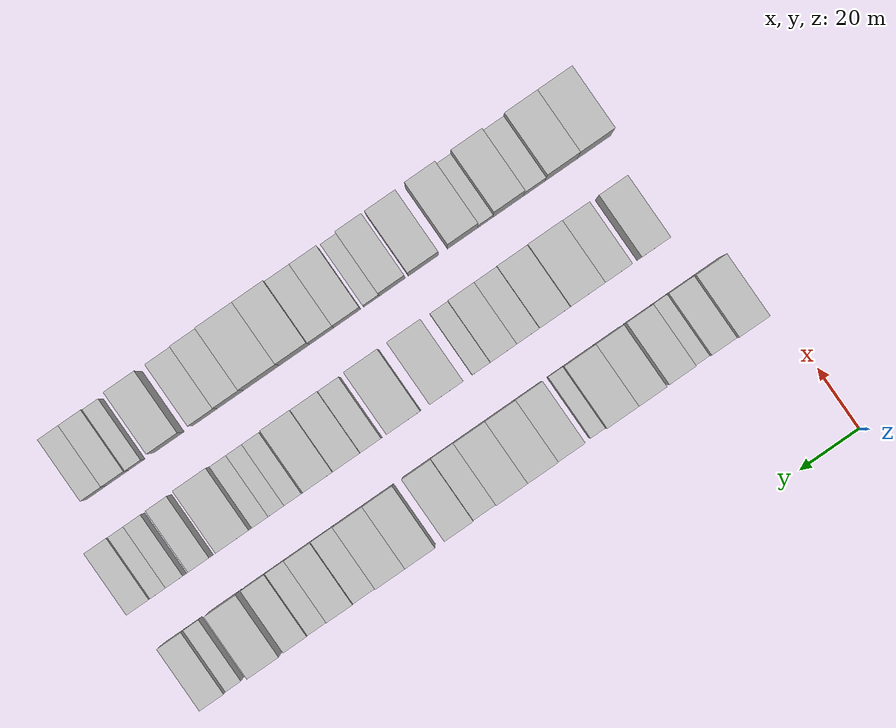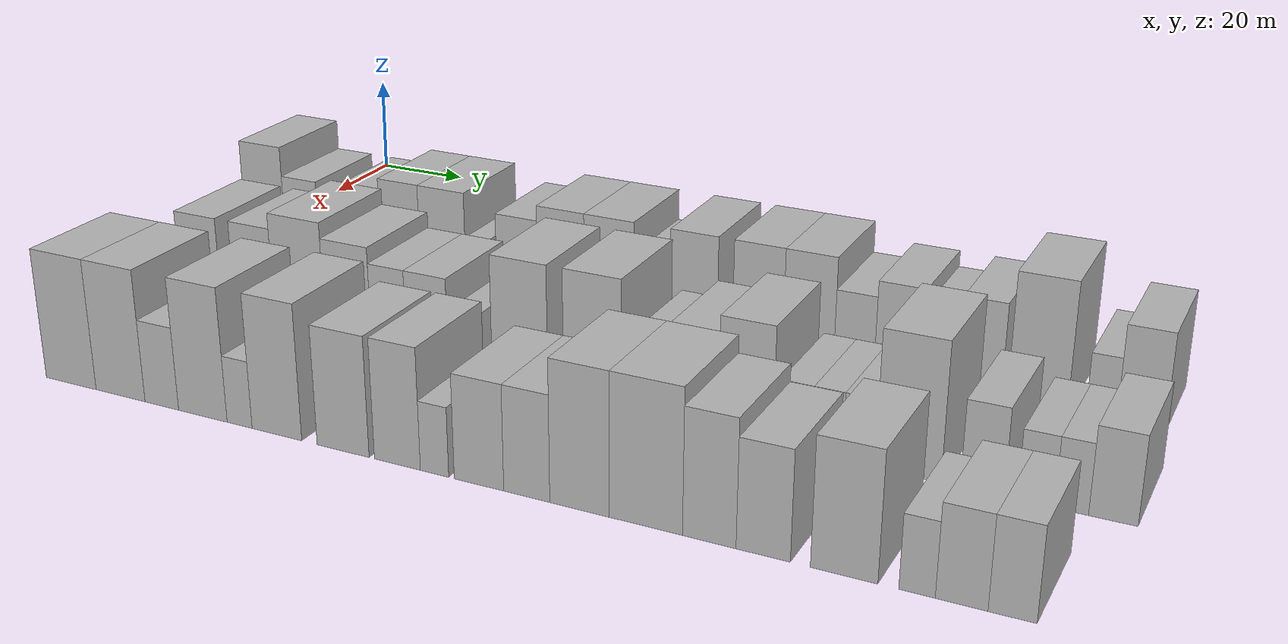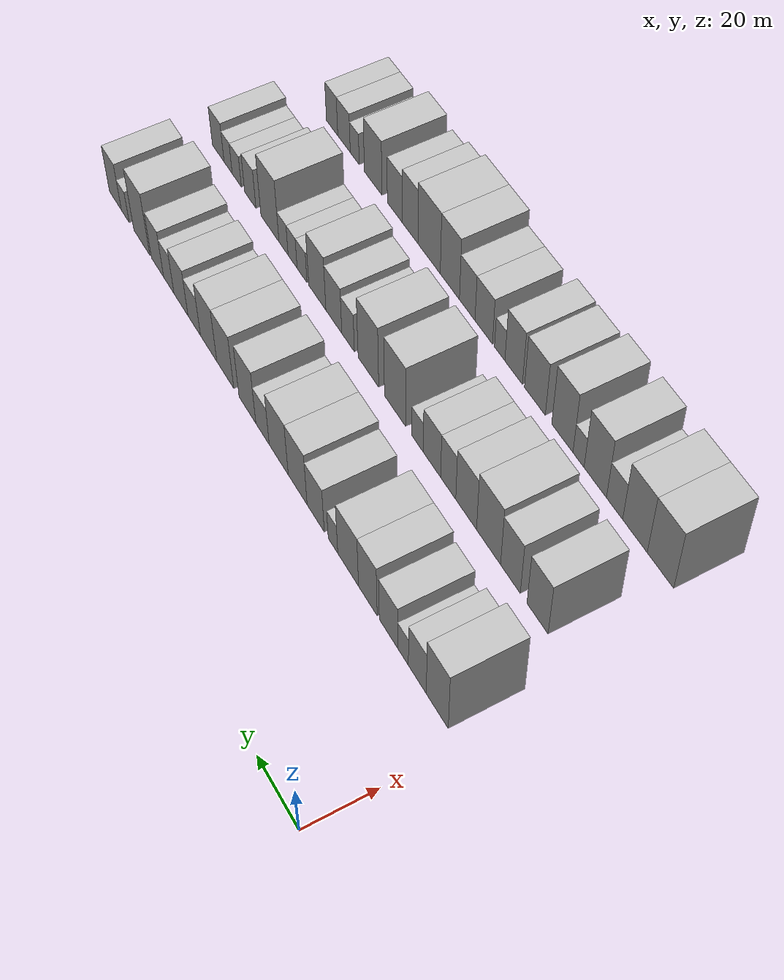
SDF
<sdf version="1.6">
 <world name="default">
  <model name="building_41">
   <static>1</static>
   <pose>50.0000 9.9860 0 0.000000 0.000000 0.000000</pose>
   <link name="link">
    <pose>0 0 12.00 0 0 0</pose>
    <collision name="collision"><geometry><box><size>20.0000 9.8801 24.0000</size></box></geometry></collision>
    <visual name="visual">
     <cast_shadows>0</cast_shadows>
     <geometry><box><size>20.0000 9.8801 24.0000</size></box></geometry>
     <material>
      <script>
       <uri>model://HANNAS_wall/materials/scripts</uri>
       <uri>model://HANNAS_wall/materials/textures</uri>
       <name>vrc/HANNAS_wall</name>
      </script>
     </material>
    </visual>
   </link>
  </model>
  <model name="building_42">
   <static>1</static>
   <pose>50.0000 19.0337 0 0.000000 0.000000 0.000000</pose>
   <link name="link">
    <pose>0 0 9.00 0 0 0</pose>
    <collision name="collision"><geometry><box><size>20.0000 8.2153 18.0000</size></box></geometry></collision>
    <visual name="visual">
     <cast_shadows>0</cast_shadows>
     <geometry><box><size>20.0000 8.2153 18.0000</size></box></geometry>
     <material>
      <script>
       <uri>model://HANNAS_wall/materials/scripts</uri>
       <uri>model://HANNAS_wall/materials/textures</uri>
       <name>vrc/HANNAS_wall</name>
      </script>
     </material>
    </visual>
   </link>
  </model>
  <model name="building_43">
   <static>1</static>
   <pose>50.0000 25.6205 0 0.000000 0.000000 0.000000</pose>
   <link name="link">
    <pose>0 0 6.00 0 0 0</pose>
    <collision name="collision"><geometry><box><size>20.0000 4.9583 12.0000</size></box></geometry></collision>
    <visual name="visual">
     <cast_shadows>0</cast_shadows>
     <geometry><box><size>20.0000 4.9583 12.0000</size></box></geometry>
     <material>
      <script>
       <uri>model://HANNAS_wall/materials/scripts</uri>
       <uri>model://HANNAS_wall/materials/textures</uri>
       <name>vrc/HANNAS_wall</name>
      </script>
     </material>
    </visual>
   </link>
  </model>
  <model name="building_44">
   <static>1</static>
   <pose>50.0000 32.4758 0 0.000000 0.000000 0.000000</pose>
   <link name="link">
    <pose>0 0 9.00 0 0 0</pose>
    <collision name="collision"><geometry><box><size>20.0000 8.7523 18.0000</size></box></geometry></collision>
    <visual name="visual">
     <cast_shadows>0</cast_shadows>
     <geometry><box><size>20.0000 8.7523 18.0000</size></box></geometry>
     <material>
      <script>
       <uri>model://HANNAS_wall/materials/scripts</uri>
       <uri>model://HANNAS_wall/materials/textures</uri>
       <name>vrc/HANNAS_wall</name>
      </script>
     </material>
    </visual>
   </link>
  </model>
  <model name="building_45">
   <static>1</static>
   <pose>50.0000 42.3692 0 0.000000 0.000000 0.000000</pose>
   <link name="link">
    <pose>0 0 10.50 0 0 0</pose>
    <collision name="collision"><geometry><box><size>20.0000 9.0345 21.0000</size></box></geometry></collision>
    <visual name="visual">
     <cast_shadows>0</cast_shadows>
     <geometry><box><size>20.0000 9.0345 21.0000</size></box></geometry>
     <material>
      <script>
       <uri>model://HANNAS_wall/materials/scripts</uri>
       <uri>model://HANNAS_wall/materials/textures</uri>
       <name>vrc/HANNAS_wall</name>
      </script>
     </material>
    </visual>
   </link>
  </model>
  <model name="building_46">
   <static>1</static>
   <pose>50.0000 52.0392 0 0.000000 0.000000 0.000000</pose>
   <link name="link">
    <pose>0 0 10.50 0 0 0</pose>
    <collision name="collision"><geometry><box><size>20.0000 10.3055 21.0000</size></box></geometry></collision>
    <visual name="visual">
     <cast_shadows>0</cast_shadows>
     <geometry><box><size>20.0000 10.3055 21.0000</size></box></geometry>
     <material>
      <script>
       <uri>model://HANNAS_wall/materials/scripts</uri>
       <uri>model://HANNAS_wall/materials/textures</uri>
       <name>vrc/HANNAS_wall</name>
      </script>
     </material>
    </visual>
   </link>
  </model>
  <model name="building_47">
   <static>1</static>
   <pose>50.0000 59.6052 0 0.000000 0.000000 0.000000</pose>
   <link name="link">
    <pose>0 0 6.00 0 0 0</pose>
    <collision name="collision"><geometry><box><size>20.0000 4.8266 12.0000</size></box></geometry></collision>
    <visual name="visual">
     <cast_shadows>0</cast_shadows>
     <geometry><box><size>20.0000 4.8266 12.0000</size></box></geometry>
     <material>
      <script>
       <uri>model://HANNAS_wall/materials/scripts</uri>
       <uri>model://HANNAS_wall/materials/textures</uri>
       <name>vrc/HANNAS_wall</name>
      </script>
     </material>
    </visual>
   </link>
  </model>
  <model name="building_48">
   <static>1</static>
   <pose>50.0000 68.4379 0 0.000000 0.000000 0.000000</pose>
   <link name="link">
    <pose>0 0 9.00 0 0 0</pose>
    <collision name="collision"><geometry><box><size>20.0000 8.8388 18.0000</size></box></geometry></collision>
    <visual name="visual">
     <cast_shadows>0</cast_shadows>
     <geometry><box><size>20.0000 8.8388 18.0000</size></box></geometry>
     <material>
      <script>
       <uri>model://HANNAS_wall/materials/scripts</uri>
       <uri>model://HANNAS_wall/materials/textures</uri>
       <name>vrc/HANNAS_wall</name>
      </script>
     </material>
    </visual>
   </link>
  </model>
  <model name="building_49">
   <static>1</static>
   <pose>50.0000 77.8143 0 0.000000 0.000000 0.000000</pose>
   <link name="link">
    <pose>0 0 10.50 0 0 0</pose>
    <collision name="collision"><geometry><box><size>20.0000 9.9141 21.0000</size></box></geometry></collision>
    <visual name="visual">
     <cast_shadows>0</cast_shadows>
     <geometry><box><size>20.0000 9.9141 21.0000</size></box></geometry>
     <material>
      <script>
       <uri>model://HANNAS_wall/materials/scripts</uri>
       <uri>model://HANNAS_wall/materials/textures</uri>
       <name>vrc/HANNAS_wall</name>
      </script>
     </material>
    </visual>
   </link>
  </model>
  <model name="building_50">
   <static>1</static>
   <pose>50.0000 87.8708 0 0.000000 0.000000 0.000000</pose>
   <link name="link">
    <pose>0 0 10.50 0 0 0</pose>
    <collision name="collision"><geometry><box><size>20.0000 10.1988 21.0000</size></box></geometry></collision>
    <visual name="visual">
     <cast_shadows>0</cast_shadows>
     <geometry><box><size>20.0000 10.1988 21.0000</size></box></geometry>
     <material>
      <script>
       <uri>model://HANNAS_wall/materials/scripts</uri>
       <uri>model://HANNAS_wall/materials/textures</uri>
       <name>vrc/HANNAS_wall</name>
      </script>
     </material>
    </visual>
   </link>
  </model>
  <model name="building_51">
   <static>1</static>
   <pose>50.0000 96.6407 0 0.000000 0.000000 0.000000</pose>
   <link name="link">
    <pose>0 0 7.50 0 0 0</pose>
    <collision name="collision"><geometry><box><size>20.0000 7.3410 15.0000</size></box></geometry></collision>
    <visual name="visual">
     <cast_shadows>0</cast_shadows>
     <geometry><box><size>20.0000 7.3410 15.0000</size></box></geometry>
     <material>
      <script>
       <uri>model://HANNAS_wall/materials/scripts</uri>
       <uri>model://HANNAS_wall/materials/textures</uri>
       <name>vrc/HANNAS_wall</name>
      </script>
     </material>
    </visual>
   </link>
  </model>
  <model name="building_52">
   <static>1</static>
   <pose>50.0000 104.9960 0 0.000000 0.000000 0.000000</pose>
   <link name="link">
    <pose>0 0 10.50 0 0 0</pose>
    <collision name="collision"><geometry><box><size>20.0000 9.3695 21.0000</size></box></geometry></collision>
    <visual name="visual">
     <cast_shadows>0</cast_shadows>
     <geometry><box><size>20.0000 9.3695 21.0000</size></box></geometry>
     <material>
      <script>
       <uri>model://HANNAS_wall/materials/scripts</uri>
       <uri>model://HANNAS_wall/materials/textures</uri>
       <name>vrc/HANNAS_wall</name>
      </script>
     </material>
    </visual>
   </link>
  </model>
  <model name="building_53">
   <static>1</static>
   <pose>50.0000 117.5351 0 0.000000 0.000000 0.000000</pose>
   <link name="link">
    <pose>0 0 10.50 0 0 0</pose>
    <collision name="collision"><geometry><box><size>20.0000 9.7089 21.0000</size></box></geometry></collision>
    <visual name="visual">
     <cast_shadows>0</cast_shadows>
     <geometry><box><size>20.0000 9.7089 21.0000</size></box></geometry>
     <material>
      <script>
       <uri>model://HANNAS_wall/materials/scripts</uri>
       <uri>model://HANNAS_wall/materials/textures</uri>
       <name>vrc/HANNAS_wall</name>
      </script>
     </material>
    </visual>
   </link>
  </model>
  <model name="building_54">
   <static>1</static>
   <pose>50.0000 127.1833 0 0.000000 0.000000 0.000000</pose>
   <link name="link">
    <pose>0 0 10.50 0 0 0</pose>
    <collision name="collision"><geometry><box><size>20.0000 9.5875 21.0000</size></box></geometry></collision>
    <visual name="visual">
     <cast_shadows>0</cast_shadows>
     <geometry><box><size>20.0000 9.5875 21.0000</size></box></geometry>
     <material>
      <script>
       <uri>model://HANNAS_wall/materials/scripts</uri>
       <uri>model://HANNAS_wall/materials/textures</uri>
       <name>vrc/HANNAS_wall</name>
      </script>
     </material>
    </visual>
   </link>
  </model>
  <model name="building_55">
   <static>1</static>
   <pose>50.0000 135.6853 0 0.000000 0.000000 0.000000</pose>
   <link name="link">
    <pose>0 0 7.50 0 0 0</pose>
    <collision name="collision"><geometry><box><size>20.0000 7.4165 15.0000</size></box></geometry></collision>
    <visual name="visual">
     <cast_shadows>0</cast_shadows>
     <geometry><box><size>20.0000 7.4165 15.0000</size></box></geometry>
     <material>
      <script>
       <uri>model://HANNAS_wall/materials/scripts</uri>
       <uri>model://HANNAS_wall/materials/textures</uri>
       <name>vrc/HANNAS_wall</name>
      </script>
     </material>
    </visual>
   </link>
  </model>
  <model name="building_56">
   <static>1</static>
   <pose>50.0000 143.6408 0 0.000000 0.000000 0.000000</pose>
   <link name="link">
    <pose>0 0 9.00 0 0 0</pose>
    <collision name="collision"><geometry><box><size>20.0000 8.4945 18.0000</size></box></geometry></collision>
    <visual name="visual">
     <cast_shadows>0</cast_shadows>
     <geometry><box><size>20.0000 8.4945 18.0000</size></box></geometry>
     <material>
      <script>
       <uri>model://HANNAS_wall/materials/scripts</uri>
       <uri>model://HANNAS_wall/materials/textures</uri>
       <name>vrc/HANNAS_wall</name>
      </script>
     </material>
    </visual>
   </link>
  </model>
  <model name="building_57">
   <static>1</static>
   <pose>50.0000 151.0541 0 0.000000 0.000000 0.000000</pose>
   <link name="link">
    <pose>0 0 7.50 0 0 0</pose>
    <collision name="collision"><geometry><box><size>20.0000 6.3321 15.0000</size></box></geometry></collision>
    <visual name="visual">
     <cast_shadows>0</cast_shadows>
     <geometry><box><size>20.0000 6.3321 15.0000</size></box></geometry>
     <material>
      <script>
       <uri>model://HANNAS_wall/materials/scripts</uri>
       <uri>model://HANNAS_wall/materials/textures</uri>
       <name>vrc/HANNAS_wall</name>
      </script>
     </material>
    </visual>
   </link>
  </model>
  <model name="building_58">
   <static>1</static>
   <pose>50.0000 158.0417 0 0.000000 0.000000 0.000000</pose>
   <link name="link">
    <pose>0 0 9.00 0 0 0</pose>
    <collision name="collision"><geometry><box><size>20.0000 7.6431 18.0000</size></box></geometry></collision>
    <visual name="visual">
     <cast_shadows>0</cast_shadows>
     <geometry><box><size>20.0000 7.6431 18.0000</size></box></geometry>
     <material>
      <script>
       <uri>model://HANNAS_wall/materials/scripts</uri>
       <uri>model://HANNAS_wall/materials/textures</uri>
       <name>vrc/HANNAS_wall</name>
      </script>
     </material>
    </visual>
   </link>
  </model>
  <model name="building_59">
   <static>1</static>
   <pose>50.0000 167.9528 0 0.000000 0.000000 0.000000</pose>
   <link name="link">
    <pose>0 0 12.00 0 0 0</pose>
    <collision name="collision"><geometry><box><size>20.0000 10.1789 24.0000</size></box></geometry></collision>
    <visual name="visual">
     <cast_shadows>0</cast_shadows>
     <geometry><box><size>20.0000 10.1789 24.0000</size></box></geometry>
     <material>
      <script>
       <uri>model://HANNAS_wall/materials/scripts</uri>
       <uri>model://HANNAS_wall/materials/textures</uri>
       <name>vrc/HANNAS_wall</name>
      </script>
     </material>
    </visual>
   </link>
  </model>
  <model name="building_60">
   <static>1</static>
   <pose>50.0000 178.5669 0 0.000000 0.000000 0.000000</pose>
   <link name="link">
    <pose>0 0 6.00 0 0 0</pose>
    <collision name="collision"><geometry><box><size>20.0000 5.0494 12.0000</size></box></geometry></collision>
    <visual name="visual">
     <cast_shadows>0</cast_shadows>
     <geometry><box><size>20.0000 5.0494 12.0000</size></box></geometry>
     <material>
      <script>
       <uri>model://HANNAS_wall/materials/scripts</uri>
       <uri>model://HANNAS_wall/materials/textures</uri>
       <name>vrc/HANNAS_wall</name>
      </script>
     </material>
    </visual>
   </link>
  </model>
  <model name="building_61">
   <static>1</static>
   <pose>50.0000 185.0106 0 0.000000 0.000000 0.000000</pose>
   <link name="link">
    <pose>0 0 9.00 0 0 0</pose>
    <collision name="collision"><geometry><box><size>20.0000 7.8381 18.0000</size></box></geometry></collision>
    <visual name="visual">
     <cast_shadows>0</cast_shadows>
     <geometry><box><size>20.0000 7.8381 18.0000</size></box></geometry>
     <material>
      <script>
       <uri>model://HANNAS_wall/materials/scripts</uri>
       <uri>model://HANNAS_wall/materials/textures</uri>
       <name>vrc/HANNAS_wall</name>
      </script>
     </material>
    </visual>
   </link>
  </model>
  <model name="building_119">
   <static>1</static>
   <pose>82.0000 19.0891 0 0.000000 0.000000 0.000000</pose>
   <link name="link">
    <pose>0 0 10.50 0 0 0</pose>
    <collision name="collision"><geometry><box><size>20.0000 9.3043 21.0000</size></box></geometry></collision>
    <visual name="visual">
     <cast_shadows>0</cast_shadows>
     <geometry><box><size>20.0000 9.3043 21.0000</size></box></geometry>
     <material>
      <script>
       <uri>model://HANNAS_wall/materials/scripts</uri>
       <uri>model://HANNAS_wall/materials/textures</uri>
       <name>vrc/HANNAS_wall</name>
      </script>
     </material>
    </visual>
   </link>
  </model>
  <model name="building_120">
   <static>1</static>
   <pose>82.0000 31.2107 0 0.000000 0.000000 0.000000</pose>
   <link name="link">
    <pose>0 0 10.50 0 0 0</pose>
    <collision name="collision"><geometry><box><size>20.0000 8.9389 21.0000</size></box></geometry></collision>
    <visual name="visual">
     <cast_shadows>0</cast_shadows>
     <geometry><box><size>20.0000 8.9389 21.0000</size></box></geometry>
     <material>
      <script>
       <uri>model://HANNAS_wall/materials/scripts</uri>
       <uri>model://HANNAS_wall/materials/textures</uri>
       <name>vrc/HANNAS_wall</name>
      </script>
     </material>
    </visual>
   </link>
  </model>
  <model name="building_121">
   <static>1</static>
   <pose>82.0000 41.2466 0 0.000000 0.000000 0.000000</pose>
   <link name="link">
    <pose>0 0 12.00 0 0 0</pose>
    <collision name="collision"><geometry><box><size>20.0000 11.1328 24.0000</size></box></geometry></collision>
    <visual name="visual">
     <cast_shadows>0</cast_shadows>
     <geometry><box><size>20.0000 11.1328 24.0000</size></box></geometry>
     <material>
      <script>
       <uri>model://HANNAS_wall/materials/scripts</uri>
       <uri>model://HANNAS_wall/materials/textures</uri>
       <name>vrc/HANNAS_wall</name>
      </script>
     </material>
    </visual>
   </link>
  </model>
  <model name="building_122">
   <static>1</static>
   <pose>82.0000 51.7374 0 0.000000 0.000000 0.000000</pose>
   <link name="link">
    <pose>0 0 10.50 0 0 0</pose>
    <collision name="collision"><geometry><box><size>20.0000 9.8489 21.0000</size></box></geometry></collision>
    <visual name="visual">
     <cast_shadows>0</cast_shadows>
     <geometry><box><size>20.0000 9.8489 21.0000</size></box></geometry>
     <material>
      <script>
       <uri>model://HANNAS_wall/materials/scripts</uri>
       <uri>model://HANNAS_wall/materials/textures</uri>
       <name>vrc/HANNAS_wall</name>
      </script>
     </material>
    </visual>
   </link>
  </model>
  <model name="building_123">
   <static>1</static>
   <pose>82.0000 60.3269 0 0.000000 0.000000 0.000000</pose>
   <link name="link">
    <pose>0 0 9.00 0 0 0</pose>
    <collision name="collision"><geometry><box><size>20.0000 7.3301 18.0000</size></box></geometry></collision>
    <visual name="visual">
     <cast_shadows>0</cast_shadows>
     <geometry><box><size>20.0000 7.3301 18.0000</size></box></geometry>
     <material>
      <script>
       <uri>model://HANNAS_wall/materials/scripts</uri>
       <uri>model://HANNAS_wall/materials/textures</uri>
       <name>vrc/HANNAS_wall</name>
      </script>
     </material>
    </visual>
   </link>
  </model>
  <model name="building_124">
   <static>1</static>
   <pose>82.0000 68.2621 0 0.000000 0.000000 0.000000</pose>
   <link name="link">
    <pose>0 0 9.00 0 0 0</pose>
    <collision name="collision"><geometry><box><size>20.0000 8.5404 18.0000</size></box></geometry></collision>
    <visual name="visual">
     <cast_shadows>0</cast_shadows>
     <geometry><box><size>20.0000 8.5404 18.0000</size></box></geometry>
     <material>
      <script>
       <uri>model://HANNAS_wall/materials/scripts</uri>
       <uri>model://HANNAS_wall/materials/textures</uri>
       <name>vrc/HANNAS_wall</name>
      </script>
     </material>
    </visual>
   </link>
  </model>
  <model name="building_125">
   <static>1</static>
   <pose>82.0000 75.4451 0 0.000000 0.000000 0.000000</pose>
   <link name="link">
    <pose>0 0 6.00 0 0 0</pose>
    <collision name="collision"><geometry><box><size>20.0000 5.8255 12.0000</size></box></geometry></collision>
    <visual name="visual">
     <cast_shadows>0</cast_shadows>
     <geometry><box><size>20.0000 5.8255 12.0000</size></box></geometry>
     <material>
      <script>
       <uri>model://HANNAS_wall/materials/scripts</uri>
       <uri>model://HANNAS_wall/materials/textures</uri>
       <name>vrc/HANNAS_wall</name>
      </script>
     </material>
    </visual>
   </link>
  </model>
  <model name="building_126">
   <static>1</static>
   <pose>82.0000 86.7771 0 0.000000 0.000000 0.000000</pose>
   <link name="link">
    <pose>0 0 12.00 0 0 0</pose>
    <collision name="collision"><geometry><box><size>20.0000 10.8386 24.0000</size></box></geometry></collision>
    <visual name="visual">
     <cast_shadows>0</cast_shadows>
     <geometry><box><size>20.0000 10.8386 24.0000</size></box></geometry>
     <material>
      <script>
       <uri>model://HANNAS_wall/materials/scripts</uri>
       <uri>model://HANNAS_wall/materials/textures</uri>
       <name>vrc/HANNAS_wall</name>
      </script>
     </material>
    </visual>
   </link>
  </model>
  <model name="building_127">
   <static>1</static>
   <pose>82.0000 100.6241 0 0.000000 0.000000 0.000000</pose>
   <link name="link">
    <pose>0 0 12.00 0 0 0</pose>
    <collision name="collision"><geometry><box><size>20.0000 10.8555 24.0000</size></box></geometry></collision>
    <visual name="visual">
     <cast_shadows>0</cast_shadows>
     <geometry><box><size>20.0000 10.8555 24.0000</size></box></geometry>
     <material>
      <script>
       <uri>model://HANNAS_wall/materials/scripts</uri>
       <uri>model://HANNAS_wall/materials/textures</uri>
       <name>vrc/HANNAS_wall</name>
      </script>
     </material>
    </visual>
   </link>
  </model>
  <model name="building_128">
   <static>1</static>
   <pose>82.0000 111.4396 0 0.000000 0.000000 0.000000</pose>
   <link name="link">
    <pose>0 0 7.50 0 0 0</pose>
    <collision name="collision"><geometry><box><size>20.0000 6.7754 15.0000</size></box></geometry></collision>
    <visual name="visual">
     <cast_shadows>0</cast_shadows>
     <geometry><box><size>20.0000 6.7754 15.0000</size></box></geometry>
     <material>
      <script>
       <uri>model://HANNAS_wall/materials/scripts</uri>
       <uri>model://HANNAS_wall/materials/textures</uri>
       <name>vrc/HANNAS_wall</name>
      </script>
     </material>
    </visual>
   </link>
  </model>
  <model name="building_129">
   <static>1</static>
   <pose>82.0000 119.1955 0 0.000000 0.000000 0.000000</pose>
   <link name="link">
    <pose>0 0 9.00 0 0 0</pose>
    <collision name="collision"><geometry><box><size>20.0000 8.7366 18.0000</size></box></geometry></collision>
    <visual name="visual">
     <cast_shadows>0</cast_shadows>
     <geometry><box><size>20.0000 8.7366 18.0000</size></box></geometry>
     <material>
      <script>
       <uri>model://HANNAS_wall/materials/scripts</uri>
       <uri>model://HANNAS_wall/materials/textures</uri>
       <name>vrc/HANNAS_wall</name>
      </script>
     </material>
    </visual>
   </link>
  </model>
  <model name="building_130">
   <static>1</static>
   <pose>82.0000 128.3470 0 0.000000 0.000000 0.000000</pose>
   <link name="link">
    <pose>0 0 10.50 0 0 0</pose>
    <collision name="collision"><geometry><box><size>20.0000 9.5664 21.0000</size></box></geometry></collision>
    <visual name="visual">
     <cast_shadows>0</cast_shadows>
     <geometry><box><size>20.0000 9.5664 21.0000</size></box></geometry>
     <material>
      <script>
       <uri>model://HANNAS_wall/materials/scripts</uri>
       <uri>model://HANNAS_wall/materials/textures</uri>
       <name>vrc/HANNAS_wall</name>
      </script>
     </material>
    </visual>
   </link>
  </model>
  <model name="building_131">
   <static>1</static>
   <pose>82.0000 136.9515 0 0.000000 0.000000 0.000000</pose>
   <link name="link">
    <pose>0 0 6.00 0 0 0</pose>
    <collision name="collision"><geometry><box><size>20.0000 5.6425 12.0000</size></box></geometry></collision>
    <visual name="visual">
     <cast_shadows>0</cast_shadows>
     <geometry><box><size>20.0000 5.6425 12.0000</size></box></geometry>
     <material>
      <script>
       <uri>model://HANNAS_wall/materials/scripts</uri>
       <uri>model://HANNAS_wall/materials/textures</uri>
       <name>vrc/HANNAS_wall</name>
      </script>
     </material>
    </visual>
   </link>
  </model>
  <model name="building_132">
   <static>1</static>
   <pose>82.0000 142.3562 0 0.000000 0.000000 0.000000</pose>
   <link name="link">
    <pose>0 0 6.00 0 0 0</pose>
    <collision name="collision"><geometry><box><size>20.0000 5.1669 12.0000</size></box></geometry></collision>
    <visual name="visual">
     <cast_shadows>0</cast_shadows>
     <geometry><box><size>20.0000 5.1669 12.0000</size></box></geometry>
     <material>
      <script>
       <uri>model://HANNAS_wall/materials/scripts</uri>
       <uri>model://HANNAS_wall/materials/textures</uri>
       <name>vrc/HANNAS_wall</name>
      </script>
     </material>
    </visual>
   </link>
  </model>
  <model name="building_133">
   <static>1</static>
   <pose>82.0000 147.6050 0 0.000000 0.000000 0.000000</pose>
   <link name="link">
    <pose>0 0 6.00 0 0 0</pose>
    <collision name="collision"><geometry><box><size>20.0000 5.3308 12.0000</size></box></geometry></collision>
    <visual name="visual">
     <cast_shadows>0</cast_shadows>
     <geometry><box><size>20.0000 5.3308 12.0000</size></box></geometry>
     <material>
      <script>
       <uri>model://HANNAS_wall/materials/scripts</uri>
       <uri>model://HANNAS_wall/materials/textures</uri>
       <name>vrc/HANNAS_wall</name>
      </script>
     </material>
    </visual>
   </link>
  </model>
  <model name="building_134">
   <static>1</static>
   <pose>82.0000 155.6053 0 0.000000 0.000000 0.000000</pose>
   <link name="link">
    <pose>0 0 12.00 0 0 0</pose>
    <collision name="collision"><geometry><box><size>20.0000 10.6698 24.0000</size></box></geometry></collision>
    <visual name="visual">
     <cast_shadows>0</cast_shadows>
     <geometry><box><size>20.0000 10.6698 24.0000</size></box></geometry>
     <material>
      <script>
       <uri>model://HANNAS_wall/materials/scripts</uri>
       <uri>model://HANNAS_wall/materials/textures</uri>
       <name>vrc/HANNAS_wall</name>
      </script>
     </material>
    </visual>
   </link>
  </model>
  <model name="building_135">
   <static>1</static>
   <pose>82.0000 167.3570 0 0.000000 0.000000 0.000000</pose>
   <link name="link">
    <pose>0 0 7.50 0 0 0</pose>
    <collision name="collision"><geometry><box><size>20.0000 6.8337 15.0000</size></box></geometry></collision>
    <visual name="visual">
     <cast_shadows>0</cast_shadows>
     <geometry><box><size>20.0000 6.8337 15.0000</size></box></geometry>
     <material>
      <script>
       <uri>model://HANNAS_wall/materials/scripts</uri>
       <uri>model://HANNAS_wall/materials/textures</uri>
       <name>vrc/HANNAS_wall</name>
      </script>
     </material>
    </visual>
   </link>
  </model>
  <model name="building_136">
   <static>1</static>
   <pose>82.0000 175.5935 0 0.000000 0.000000 0.000000</pose>
   <link name="link">
    <pose>0 0 6.00 0 0 0</pose>
    <collision name="collision"><geometry><box><size>20.0000 5.6394 12.0000</size></box></geometry></collision>
    <visual name="visual">
     <cast_shadows>0</cast_shadows>
     <geometry><box><size>20.0000 5.6394 12.0000</size></box></geometry>
     <material>
      <script>
       <uri>model://HANNAS_wall/materials/scripts</uri>
       <uri>model://HANNAS_wall/materials/textures</uri>
       <name>vrc/HANNAS_wall</name>
      </script>
     </material>
    </visual>
   </link>
  </model>
  <model name="building_137">
   <static>1</static>
   <pose>82.0000 180.9461 0 0.000000 0.000000 0.000000</pose>
   <link name="link">
    <pose>0 0 6.00 0 0 0</pose>
    <collision name="collision"><geometry><box><size>20.0000 5.0657 12.0000</size></box></geometry></collision>
    <visual name="visual">
     <cast_shadows>0</cast_shadows>
     <geometry><box><size>20.0000 5.0657 12.0000</size></box></geometry>
     <material>
      <script>
       <uri>model://HANNAS_wall/materials/scripts</uri>
       <uri>model://HANNAS_wall/materials/textures</uri>
       <name>vrc/HANNAS_wall</name>
      </script>
     </material>
    </visual>
   </link>
  </model>
  <model name="building_138">
   <static>1</static>
   <pose>82.0000 187.1192 0 0.000000 0.000000 0.000000</pose>
   <link name="link">
    <pose>0 0 7.50 0 0 0</pose>
    <collision name="collision"><geometry><box><size>20.0000 7.2805 15.0000</size></box></geometry></collision>
    <visual name="visual">
     <cast_shadows>0</cast_shadows>
     <geometry><box><size>20.0000 7.2805 15.0000</size></box></geometry>
     <material>
      <script>
       <uri>model://HANNAS_wall/materials/scripts</uri>
       <uri>model://HANNAS_wall/materials/textures</uri>
       <name>vrc/HANNAS_wall</name>
      </script>
     </material>
    </visual>
   </link>
  </model>
  <model name="building_203">
   <static>1</static>
   <pose>114.0000 15.8854 0 0.000000 0.000000 0.000000</pose>
   <link name="link">
    <pose>0 0 12.00 0 0 0</pose>
    <collision name="collision"><geometry><box><size>20.0000 11.1500 24.0000</size></box></geometry></collision>
    <visual name="visual">
     <cast_shadows>0</cast_shadows>
     <geometry><box><size>20.0000 11.1500 24.0000</size></box></geometry>
     <material>
      <script>
       <uri>model://HANNAS_wall/materials/scripts</uri>
       <uri>model://HANNAS_wall/materials/textures</uri>
       <name>vrc/HANNAS_wall</name>
      </script>
     </material>
    </visual>
   </link>
  </model>
  <model name="building_204">
   <static>1</static>
   <pose>114.0000 26.7930 0 0.000000 0.000000 0.000000</pose>
   <link name="link">
    <pose>0 0 12.00 0 0 0</pose>
    <collision name="collision"><geometry><box><size>20.0000 10.6653 24.0000</size></box></geometry></collision>
    <visual name="visual">
     <cast_shadows>0</cast_shadows>
     <geometry><box><size>20.0000 10.6653 24.0000</size></box></geometry>
     <material>
      <script>
       <uri>model://HANNAS_wall/materials/scripts</uri>
       <uri>model://HANNAS_wall/materials/textures</uri>
       <name>vrc/HANNAS_wall</name>
      </script>
     </material>
    </visual>
   </link>
  </model>
  <model name="building_205">
   <static>1</static>
   <pose>114.0000 35.6907 0 0.000000 0.000000 0.000000</pose>
   <link name="link">
    <pose>0 0 7.50 0 0 0</pose>
    <collision name="collision"><geometry><box><size>20.0000 7.1301 15.0000</size></box></geometry></collision>
    <visual name="visual">
     <cast_shadows>0</cast_shadows>
     <geometry><box><size>20.0000 7.1301 15.0000</size></box></geometry>
     <material>
      <script>
       <uri>model://HANNAS_wall/materials/scripts</uri>
       <uri>model://HANNAS_wall/materials/textures</uri>
       <name>vrc/HANNAS_wall</name>
      </script>
     </material>
    </visual>
   </link>
  </model>
  <model name="building_206">
   <static>1</static>
   <pose>114.0000 44.2863 0 0.000000 0.000000 0.000000</pose>
   <link name="link">
    <pose>0 0 12.00 0 0 0</pose>
    <collision name="collision"><geometry><box><size>20.0000 10.0611 24.0000</size></box></geometry></collision>
    <visual name="visual">
     <cast_shadows>0</cast_shadows>
     <geometry><box><size>20.0000 10.0611 24.0000</size></box></geometry>
     <material>
      <script>
       <uri>model://HANNAS_wall/materials/scripts</uri>
       <uri>model://HANNAS_wall/materials/textures</uri>
       <name>vrc/HANNAS_wall</name>
      </script>
     </material>
    </visual>
   </link>
  </model>
  <model name="building_207">
   <static>1</static>
   <pose>114.0000 51.8592 0 0.000000 0.000000 0.000000</pose>
   <link name="link">
    <pose>0 0 6.00 0 0 0</pose>
    <collision name="collision"><geometry><box><size>20.0000 5.0847 12.0000</size></box></geometry></collision>
    <visual name="visual">
     <cast_shadows>0</cast_shadows>
     <geometry><box><size>20.0000 5.0847 12.0000</size></box></geometry>
     <material>
      <script>
       <uri>model://HANNAS_wall/materials/scripts</uri>
       <uri>model://HANNAS_wall/materials/textures</uri>
       <name>vrc/HANNAS_wall</name>
      </script>
     </material>
    </visual>
   </link>
  </model>
  <model name="building_208">
   <static>1</static>
   <pose>114.0000 59.3313 0 0.000000 0.000000 0.000000</pose>
   <link name="link">
    <pose>0 0 12.00 0 0 0</pose>
    <collision name="collision"><geometry><box><size>20.0000 9.8594 24.0000</size></box></geometry></collision>
    <visual name="visual">
     <cast_shadows>0</cast_shadows>
     <geometry><box><size>20.0000 9.8594 24.0000</size></box></geometry>
     <material>
      <script>
       <uri>model://HANNAS_wall/materials/scripts</uri>
       <uri>model://HANNAS_wall/materials/textures</uri>
       <name>vrc/HANNAS_wall</name>
      </script>
     </material>
    </visual>
   </link>
  </model>
  <model name="building_209">
   <static>1</static>
   <pose>114.0000 72.2416 0 0.000000 0.000000 0.000000</pose>
   <link name="link">
    <pose>0 0 10.50 0 0 0</pose>
    <collision name="collision"><geometry><box><size>20.0000 9.9612 21.0000</size></box></geometry></collision>
    <visual name="visual">
     <cast_shadows>0</cast_shadows>
     <geometry><box><size>20.0000 9.9612 21.0000</size></box></geometry>
     <material>
      <script>
       <uri>model://HANNAS_wall/materials/scripts</uri>
       <uri>model://HANNAS_wall/materials/textures</uri>
       <name>vrc/HANNAS_wall</name>
      </script>
     </material>
    </visual>
   </link>
  </model>
  <model name="building_210">
   <static>1</static>
   <pose>114.0000 82.4915 0 0.000000 0.000000 0.000000</pose>
   <link name="link">
    <pose>0 0 10.50 0 0 0</pose>
    <collision name="collision"><geometry><box><size>20.0000 8.5386 21.0000</size></box></geometry></collision>
    <visual name="visual">
     <cast_shadows>0</cast_shadows>
     <geometry><box><size>20.0000 8.5386 21.0000</size></box></geometry>
     <material>
      <script>
       <uri>model://HANNAS_wall/materials/scripts</uri>
       <uri>model://HANNAS_wall/materials/textures</uri>
       <name>vrc/HANNAS_wall</name>
      </script>
     </material>
    </visual>
   </link>
  </model>
  <model name="building_211">
   <static>1</static>
   <pose>114.0000 89.3369 0 0.000000 0.000000 0.000000</pose>
   <link name="link">
    <pose>0 0 6.00 0 0 0</pose>
    <collision name="collision"><geometry><box><size>20.0000 5.1522 12.0000</size></box></geometry></collision>
    <visual name="visual">
     <cast_shadows>0</cast_shadows>
     <geometry><box><size>20.0000 5.1522 12.0000</size></box></geometry>
     <material>
      <script>
       <uri>model://HANNAS_wall/materials/scripts</uri>
       <uri>model://HANNAS_wall/materials/textures</uri>
       <name>vrc/HANNAS_wall</name>
      </script>
     </material>
    </visual>
   </link>
  </model>
  <model name="building_212">
   <static>1</static>
   <pose>114.0000 97.3094 0 0.000000 0.000000 0.000000</pose>
   <link name="link">
    <pose>0 0 9.00 0 0 0</pose>
    <collision name="collision"><geometry><box><size>20.0000 8.7929 18.0000</size></box></geometry></collision>
    <visual name="visual">
     <cast_shadows>0</cast_shadows>
     <geometry><box><size>20.0000 8.7929 18.0000</size></box></geometry>
     <material>
      <script>
       <uri>model://HANNAS_wall/materials/scripts</uri>
       <uri>model://HANNAS_wall/materials/textures</uri>
       <name>vrc/HANNAS_wall</name>
      </script>
     </material>
    </visual>
   </link>
  </model>
  <model name="building_213">
   <static>1</static>
   <pose>114.0000 105.6924 0 0.000000 0.000000 0.000000</pose>
   <link name="link">
    <pose>0 0 9.00 0 0 0</pose>
    <collision name="collision"><geometry><box><size>20.0000 7.9731 18.0000</size></box></geometry></collision>
    <visual name="visual">
     <cast_shadows>0</cast_shadows>
     <geometry><box><size>20.0000 7.9731 18.0000</size></box></geometry>
     <material>
      <script>
       <uri>model://HANNAS_wall/materials/scripts</uri>
       <uri>model://HANNAS_wall/materials/textures</uri>
       <name>vrc/HANNAS_wall</name>
      </script>
     </material>
    </visual>
   </link>
  </model>
  <model name="building_214">
   <static>1</static>
   <pose>114.0000 114.6763 0 0.000000 0.000000 0.000000</pose>
   <link name="link">
    <pose>0 0 12.00 0 0 0</pose>
    <collision name="collision"><geometry><box><size>20.0000 9.9945 24.0000</size></box></geometry></collision>
    <visual name="visual">
     <cast_shadows>0</cast_shadows>
     <geometry><box><size>20.0000 9.9945 24.0000</size></box></geometry>
     <material>
      <script>
       <uri>model://HANNAS_wall/materials/scripts</uri>
       <uri>model://HANNAS_wall/materials/textures</uri>
       <name>vrc/HANNAS_wall</name>
      </script>
     </material>
    </visual>
   </link>
  </model>
  <model name="building_215">
   <static>1</static>
   <pose>114.0000 125.6422 0 0.000000 0.000000 0.000000</pose>
   <link name="link">
    <pose>0 0 12.00 0 0 0</pose>
    <collision name="collision"><geometry><box><size>20.0000 11.9373 24.0000</size></box></geometry></collision>
    <visual name="visual">
     <cast_shadows>0</cast_shadows>
     <geometry><box><size>20.0000 11.9373 24.0000</size></box></geometry>
     <material>
      <script>
       <uri>model://HANNAS_wall/materials/scripts</uri>
       <uri>model://HANNAS_wall/materials/textures</uri>
       <name>vrc/HANNAS_wall</name>
      </script>
     </material>
    </visual>
   </link>
  </model>
  <model name="building_216">
   <static>1</static>
   <pose>114.0000 135.8293 0 0.000000 0.000000 0.000000</pose>
   <link name="link">
    <pose>0 0 10.50 0 0 0</pose>
    <collision name="collision"><geometry><box><size>20.0000 8.4369 21.0000</size></box></geometry></collision>
    <visual name="visual">
     <cast_shadows>0</cast_shadows>
     <geometry><box><size>20.0000 8.4369 21.0000</size></box></geometry>
     <material>
      <script>
       <uri>model://HANNAS_wall/materials/scripts</uri>
       <uri>model://HANNAS_wall/materials/textures</uri>
       <name>vrc/HANNAS_wall</name>
      </script>
     </material>
    </visual>
   </link>
  </model>
  <model name="building_217">
   <static>1</static>
   <pose>114.0000 144.2229 0 0.000000 0.000000 0.000000</pose>
   <link name="link">
    <pose>0 0 9.00 0 0 0</pose>
    <collision name="collision"><geometry><box><size>20.0000 8.3503 18.0000</size></box></geometry></collision>
    <visual name="visual">
     <cast_shadows>0</cast_shadows>
     <geometry><box><size>20.0000 8.3503 18.0000</size></box></geometry>
     <material>
      <script>
       <uri>model://HANNAS_wall/materials/scripts</uri>
       <uri>model://HANNAS_wall/materials/textures</uri>
       <name>vrc/HANNAS_wall</name>
      </script>
     </material>
    </visual>
   </link>
  </model>
  <model name="building_218">
   <static>1</static>
   <pose>114.0000 156.3779 0 0.000000 0.000000 0.000000</pose>
   <link name="link">
    <pose>0 0 10.50 0 0 0</pose>
    <collision name="collision"><geometry><box><size>20.0000 9.9596 21.0000</size></box></geometry></collision>
    <visual name="visual">
     <cast_shadows>0</cast_shadows>
     <geometry><box><size>20.0000 9.9596 21.0000</size></box></geometry>
     <material>
      <script>
       <uri>model://HANNAS_wall/materials/scripts</uri>
       <uri>model://HANNAS_wall/materials/textures</uri>
       <name>vrc/HANNAS_wall</name>
      </script>
     </material>
    </visual>
   </link>
  </model>
  <model name="building_219">
   <static>1</static>
   <pose>114.0000 166.9518 0 0.000000 0.000000 0.000000</pose>
   <link name="link">
    <pose>0 0 6.00 0 0 0</pose>
    <collision name="collision"><geometry><box><size>20.0000 5.1883 12.0000</size></box></geometry></collision>
    <visual name="visual">
     <cast_shadows>0</cast_shadows>
     <geometry><box><size>20.0000 5.1883 12.0000</size></box></geometry>
     <material>
      <script>
       <uri>model://HANNAS_wall/materials/scripts</uri>
       <uri>model://HANNAS_wall/materials/textures</uri>
       <name>vrc/HANNAS_wall</name>
      </script>
     </material>
    </visual>
   </link>
  </model>
  <model name="building_220">
   <static>1</static>
   <pose>114.0000 173.2168 0 0.000000 0.000000 0.000000</pose>
   <link name="link">
    <pose>0 0 7.50 0 0 0</pose>
    <collision name="collision"><geometry><box><size>20.0000 7.3418 15.0000</size></box></geometry></collision>
    <visual name="visual">
     <cast_shadows>0</cast_shadows>
     <geometry><box><size>20.0000 7.3418 15.0000</size></box></geometry>
     <material>
      <script>
       <uri>model://HANNAS_wall/materials/scripts</uri>
       <uri>model://HANNAS_wall/materials/textures</uri>
       <name>vrc/HANNAS_wall</name>
      </script>
     </material>
    </visual>
   </link>
  </model>
  <model name="building_221">
   <static>1</static>
   <pose>114.0000 180.2336 0 0.000000 0.000000 0.000000</pose>
   <link name="link">
    <pose>0 0 7.50 0 0 0</pose>
    <collision name="collision"><geometry><box><size>20.0000 6.6918 15.0000</size></box></geometry></collision>
    <visual name="visual">
     <cast_shadows>0</cast_shadows>
     <geometry><box><size>20.0000 6.6918 15.0000</size></box></geometry>
     <material>
      <script>
       <uri>model://HANNAS_wall/materials/scripts</uri>
       <uri>model://HANNAS_wall/materials/textures</uri>
       <name>vrc/HANNAS_wall</name>
      </script>
     </material>
    </visual>
   </link>
  </model>
 </world>
</sdf>
